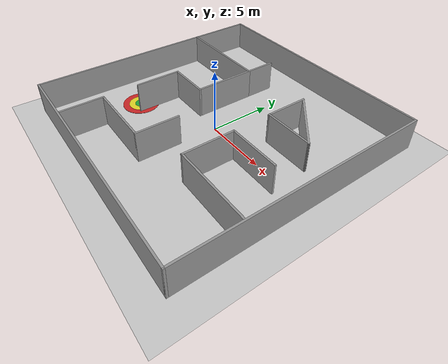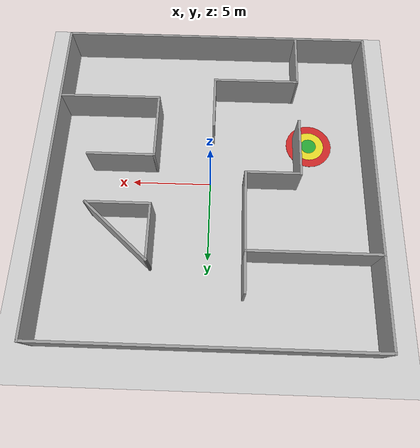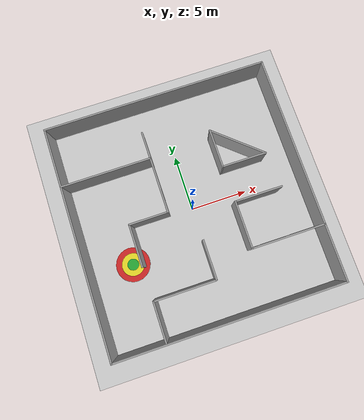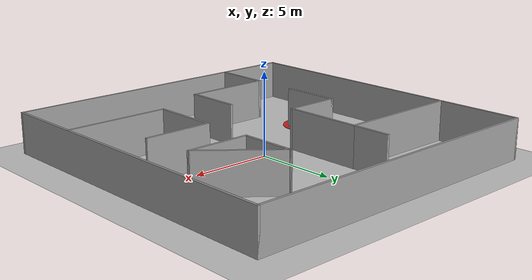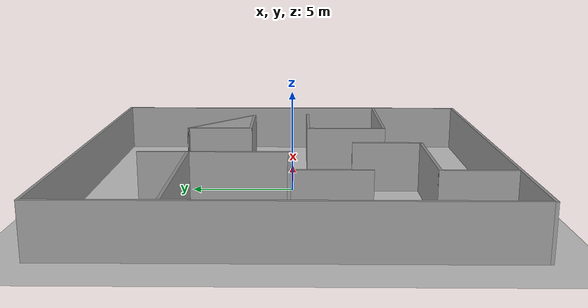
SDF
<sdf version="1.6">
 <world name="default">
  <light name="sun" type="directional">
   <pose>0 0 10 0 -0 0</pose>
   <diffuse>0.8 0.8 0.8 1</diffuse>
   <specular>0.2 0.2 0.2 1</specular>
   <attenuation>
    <range>1000</range>
    <constant>0.9</constant>
    <linear>0.01</linear>
    <quadratic>0.001</quadratic>
   </attenuation>
   <direction>0.5 0.1 -0.9</direction>
  </light>
  <model name="ground_plane">
   <static>1</static>
   <link name="link">
    <collision name="collision">
     <geometry><plane><normal>0 0 1</normal><size>100 100</size></plane></geometry>
     <surface><friction><ode><mu>100</mu><mu2>50</mu2></ode></friction></surface>
    </collision>
    <visual name="visual">
     <cast_shadows>0</cast_shadows>
     <geometry><plane><normal>0 0 1</normal><size>100 100</size></plane></geometry>
     <material>
      <script><uri>file://media/materials/scripts/gazebo.material</uri><name>Gazebo/Grey</name></script>
     </material>
    </visual>
    <velocity_decay><linear>0</linear><angular>0</angular></velocity_decay>
   </link>
  </model>
  <scene><ambient>0.4 0.4 0.4 1</ambient><background>0.7 0.7 0.7 1</background><shadows>0</shadows></scene>
  <physics name="default_physics" default="0" type="ode">
   <max_step_size>0.01</max_step_size>
   <real_time_factor>1</real_time_factor>
   <real_time_update_rate>0</real_time_update_rate>
  </physics>
  <gravity>0 0 -9.8</gravity>
  <magnetic_field>6e-06 2.3e-05 -4.2e-05</magnetic_field>
  <atmosphere type="adiabatic"/>
  <spherical_coordinates>
   <surface_model>EARTH_WGS84</surface_model>
   <latitude_deg>0</latitude_deg>
   <longitude_deg>0</longitude_deg>
   <elevation>0</elevation>
   <heading_deg>0</heading_deg>
  </spherical_coordinates>
  <model name="Target">
   <static>1</static>
   <link name="green">
    <visual name="visual">
     <geometry><cylinder><radius>0.5</radius><length>0.05</length></cylinder></geometry>
     <material>
      <script><uri>file://media/materials/scripts/gazebo.material</uri><name>Gazebo/Green</name></script>
      <ambient>1 1 1 1</ambient>
     </material>
     <cast_shadows>0</cast_shadows>
    </visual>
   </link>
   <link name="yellow">
    <visual name="visual">
     <geometry><cylinder><radius>1</radius><length>0.04</length></cylinder></geometry>
     <material>
      <script><uri>file://media/materials/scripts/gazebo.material</uri><name>Gazebo/Yellow</name></script>
      <ambient>1 1 1 1</ambient>
     </material>
     <cast_shadows>0</cast_shadows>
    </visual>
   </link>
   <link name="red">
    <visual name="visual">
     <geometry><cylinder><radius>1.5</radius><length>0.03</length></cylinder></geometry>
     <material>
      <script><uri>file://media/materials/scripts/gazebo.material</uri><name>Gazebo/Red</name></script>
      <ambient>1 1 1 1</ambient>
     </material>
     <cast_shadows>0</cast_shadows>
    </visual>
   </link>
   <pose>-6.47803 -3 0 0 -0 0</pose>
  </model>
  <model name="Test_Buliding_One">
   <pose>-0.076732 0.148221 0 0 -0 0</pose>
   <link name="Wall_0">
    <collision name="Wall_0_Collision">
     <geometry><box><size>20 0.15 2.5</size></box></geometry>
     <pose>0 0 1.25 0 -0 0</pose>
    </collision>
    <visual name="Wall_0_Visual">
     <pose>0 0 1.25 0 -0 0</pose>
     <geometry><box><size>20 0.15 2.5</size></box></geometry>
     <material>
      <script><uri>file://media/materials/scripts/gazebo.material</uri><name>Gazebo/Grey</name></script>
      <ambient>1 1 1 1</ambient>
     </material>
     <meta><layer>0</layer></meta>
    </visual>
    <pose>0 -10.05 0 0 -0 0</pose>
   </link>
   <link name="Wall_10">
    <collision name="Wall_10_Collision">
     <geometry><box><size>2.5 0.15 2.5</size></box></geometry>
     <pose>0 0 1.25 0 -0 0</pose>
    </collision>
    <visual name="Wall_10_Visual">
     <pose>0 0 1.25 0 -0 0</pose>
     <geometry><box><size>2.5 0.15 2.5</size></box></geometry>
     <material>
      <script><uri>file://media/materials/scripts/gazebo.material</uri><name>Gazebo/Grey</name></script>
      <ambient>1 1 1 1</ambient>
     </material>
     <meta><layer>0</layer></meta>
    </visual>
    <pose>-2.06302 5.97354 0 0 -0 1.5708</pose>
   </link>
   <link name="Wall_13">
    <collision name="Wall_13_Collision">
     <geometry><box><size>3.75 0.15 2.5</size></box></geometry>
     <pose>0 0 1.25 0 -0 0</pose>
    </collision>
    <visual name="Wall_13_Visual">
     <pose>0 0 1.25 0 -0 0</pose>
     <geometry><box><size>3.75 0.15 2.5</size></box></geometry>
     <material>
      <script><uri>file://media/materials/scripts/gazebo.material</uri><name>Gazebo/Grey</name></script>
      <ambient>1 1 1 1</ambient>
     </material>
     <meta><layer>0</layer></meta>
    </visual>
    <pose>-5.41302 -1.85146 0 0 0 -1.5708</pose>
   </link>
   <link name="Wall_15">
    <collision name="Wall_15_Collision">
     <geometry><box><size>3.5 0.15 2.5</size></box></geometry>
     <pose>0 0 1.25 0 -0 0</pose>
    </collision>
    <visual name="Wall_15_Visual">
     <pose>0 0 1.25 0 -0 0</pose>
     <geometry><box><size>3.5 0.15 2.5</size></box></geometry>
     <material>
      <script><uri>file://media/materials/scripts/gazebo.material</uri><name>Gazebo/Grey</name></script>
      <ambient>1 1 1 1</ambient>
     </material>
     <meta><layer>0</layer></meta>
    </visual>
    <pose>-5.38457 -8.24393 0 0 -0 1.5708</pose>
   </link>
   <link name="Wall_17">
    <collision name="Wall_17_Collision">
     <geometry><box><size>6.5 0.15 2.5</size></box></geometry>
     <pose>0 0 1.25 0 -0 0</pose>
    </collision>
    <visual name="Wall_17_Visual">
     <pose>0 0 1.25 0 -0 0</pose>
     <geometry><box><size>6.5 0.15 2.5</size></box></geometry>
     <material>
      <script><uri>file://media/materials/scripts/gazebo.material</uri><name>Gazebo/Grey</name></script>
      <ambient>1 1 1 1</ambient>
     </material>
     <meta><layer>0</layer></meta>
    </visual>
    <pose>6.72396 -5.10745 0 0 -0 3.14159</pose>
   </link>
   <link name="Wall_18">
    <collision name="Wall_18_Collision">
     <geometry><box><size>4.25 0.15 2.5</size></box></geometry>
     <pose>0 0 1.25 0 -0 0</pose>
    </collision>
    <visual name="Wall_18_Visual">
     <pose>0 0 1.25 0 -0 0</pose>
     <geometry><box><size>4.25 0.15 2.5</size></box></geometry>
     <material>
      <script><uri>file://media/materials/scripts/gazebo.material</uri><name>Gazebo/Grey</name></script>
      <ambient>1 1 1 1</ambient>
     </material>
     <meta><layer>0</layer></meta>
    </visual>
    <pose>3.54895 -3.05745 0 0 -0 1.5708</pose>
   </link>
   <link name="Wall_19">
    <collision name="Wall_19_Collision">
     <geometry><box><size>4.25 0.15 2.5</size></box></geometry>
     <pose>0 0 1.25 0 -0 0</pose>
    </collision>
    <visual name="Wall_19_Visual">
     <pose>0 0 1.25 0 -0 0</pose>
     <geometry><box><size>4.25 0.15 2.5</size></box></geometry>
     <material>
      <script><uri>file://media/materials/scripts/gazebo.material</uri><name>Gazebo/Grey</name></script>
      <ambient>1 1 1 1</ambient>
     </material>
     <meta><layer>0</layer></meta>
    </visual>
    <pose>5.59896 -1.00745 0 0 -0 0</pose>
   </link>
   <link name="Wall_2">
    <collision name="Wall_2_Collision">
     <geometry><box><size>20.25 0.15 2.5</size></box></geometry>
     <pose>0 0 1.25 0 -0 0</pose>
    </collision>
    <visual name="Wall_2_Visual">
     <pose>0 0 1.25 0 -0 0</pose>
     <geometry><box><size>20.25 0.15 2.5</size></box></geometry>
     <material>
      <script><uri>file://media/materials/scripts/gazebo.material</uri><name>Gazebo/Grey</name></script>
      <ambient>1 1 1 1</ambient>
     </material>
     <meta><layer>0</layer></meta>
    </visual>
    <pose>-9.925 0 0 0 -0 1.5708</pose>
   </link>
   <link name="Wall_21">
    <collision name="Wall_21_Collision">
     <geometry><box><size>5.5 0.15 2.5</size></box></geometry>
     <pose>0 0 1.25 0 -0 0</pose>
    </collision>
    <visual name="Wall_21_Visual">
     <pose>0 0 1.25 0 -0 0</pose>
     <geometry><box><size>5.5 0.15 2.5</size></box></geometry>
     <material>
      <script><uri>file://media/materials/scripts/gazebo.material</uri><name>Gazebo/Grey</name></script>
      <ambient>1 1 1 1</ambient>
     </material>
     <meta><layer>0</layer></meta>
    </visual>
    <pose>-2.70957 -6.56893 0 0 -0 0</pose>
   </link>
   <link name="Wall_22">
    <collision name="Wall_22_Collision">
     <geometry><box><size>3.5 0.15 2.5</size></box></geometry>
     <pose>0 0 1.25 0 -0 0</pose>
    </collision>
    <visual name="Wall_22_Visual">
     <pose>0 0 1.25 0 -0 0</pose>
     <geometry><box><size>3.5 0.15 2.5</size></box></geometry>
     <material>
      <script><uri>file://media/materials/scripts/gazebo.material</uri><name>Gazebo/Grey</name></script>
      <ambient>1 1 1 1</ambient>
     </material>
     <meta><layer>0</layer></meta>
    </visual>
    <pose>-0.03457 -4.89393 0 0 -0 1.5708</pose>
   </link>
   <link name="Wall_24">
    <collision name="Wall_24_Collision">
     <geometry><box><size>3.5 0.15 2.5</size></box></geometry>
     <pose>0 0 1.25 0 -0 0</pose>
    </collision>
    <visual name="Wall_24_Visual">
     <pose>0 0 1.25 0 -0 0</pose>
     <geometry><box><size>3.5 0.15 2.5</size></box></geometry>
     <material>
      <script><uri>file://media/materials/scripts/gazebo.material</uri><name>Gazebo/Grey</name></script>
      <ambient>1 1 1 1</ambient>
     </material>
     <meta><layer>0</layer></meta>
    </visual>
    <pose>3.53082 3.83111 0 0 0 -1.5708</pose>
   </link>
   <link name="Wall_25">
    <collision name="Wall_25_Collision">
     <geometry><box><size>4 0.15 2.5</size></box></geometry>
     <pose>0 0 1.25 0 -0 0</pose>
    </collision>
    <visual name="Wall_25_Visual">
     <pose>0 0 1.25 0 -0 0</pose>
     <geometry><box><size>4 0.15 2.5</size></box></geometry>
     <material>
      <script><uri>file://media/materials/scripts/gazebo.material</uri><name>Gazebo/Grey</name></script>
      <ambient>1 1 1 1</ambient>
     </material>
     <meta><layer>0</layer></meta>
    </visual>
    <pose>5.45582 2.15611 0 0 -0 0</pose>
   </link>
   <link name="Wall_26">
    <collision name="Wall_26_Collision">
     <geometry><box><size>5.25343 0.15 2.5</size></box></geometry>
     <pose>0 0 1.25 0 -0 0</pose>
    </collision>
    <visual name="Wall_26_Visual">
     <pose>0 0 1.25 0 -0 0</pose>
     <geometry><box><size>5.25343 0.15 2.5</size></box></geometry>
     <material>
      <script><uri>file://media/materials/scripts/gazebo.material</uri><name>Gazebo/Grey</name></script>
      <ambient>1 1 1 1</ambient>
     </material>
     <meta><layer>0</layer></meta>
    </visual>
    <pose>5.45582 3.83111 0 0 -0 2.42553</pose>
   </link>
   <link name="Wall_3">
    <collision name="Wall_3_Collision">
     <geometry><box><size>20 0.15 2.5</size></box></geometry>
     <pose>0 0 1.25 0 -0 0</pose>
    </collision>
    <visual name="Wall_3_Visual">
     <pose>0 0 1.25 0 -0 0</pose>
     <geometry><box><size>20 0.15 2.5</size></box></geometry>
     <material>
      <script><uri>file://media/materials/scripts/gazebo.material</uri><name>Gazebo/Grey</name></script>
      <ambient>1 1 1 1</ambient>
     </material>
     <meta><layer>0</layer></meta>
    </visual>
    <pose>0 10.05 0 0 -0 0</pose>
   </link>
   <link name="Wall_4">
    <collision name="Wall_4_Collision">
     <geometry><box><size>20.25 0.15 2.5</size></box></geometry>
     <pose>0 0 1.25 0 -0 0</pose>
    </collision>
    <visual name="Wall_4_Visual">
     <pose>0 0 1.25 0 -0 0</pose>
     <geometry><box><size>20.25 0.15 2.5</size></box></geometry>
     <material>
      <script><uri>file://media/materials/scripts/gazebo.material</uri><name>Gazebo/Grey</name></script>
      <ambient>1 1 1 1</ambient>
     </material>
     <meta><layer>0</layer></meta>
    </visual>
    <pose>9.925 0 0 0 0 -1.5708</pose>
   </link>
   <link name="Wall_6">
    <collision name="Wall_6_Collision">
     <geometry><box><size>8 0.15 2.5</size></box></geometry>
     <pose>0 0 1.25 0 -0 0</pose>
    </collision>
    <visual name="Wall_6_Visual">
     <pose>0 0 1.25 0 -0 0</pose>
     <geometry><box><size>8 0.15 2.5</size></box></geometry>
     <material>
      <script><uri>file://media/materials/scripts/gazebo.material</uri><name>Gazebo/Grey</name></script>
      <ambient>1 1 1 1</ambient>
     </material>
     <meta><layer>0</layer></meta>
    </visual>
    <pose>-5.98802 4.79854 0 0 -0 0</pose>
   </link>
   <link name="Wall_7">
    <collision name="Wall_7_Collision">
     <geometry><box><size>5 0.15 2.5</size></box></geometry>
     <pose>0 0 1.25 0 -0 0</pose>
    </collision>
    <visual name="Wall_7_Visual">
     <pose>0 0 1.25 0 -0 0</pose>
     <geometry><box><size>5 0.15 2.5</size></box></geometry>
     <material>
      <script><uri>file://media/materials/scripts/gazebo.material</uri><name>Gazebo/Grey</name></script>
      <ambient>1 1 1 1</ambient>
     </material>
     <meta><layer>0</layer></meta>
    </visual>
    <pose>-2.06302 2.37354 0 0 0 -1.5708</pose>
   </link>
   <link name="Wall_8">
    <collision name="Wall_8_Collision">
     <geometry><box><size>3.5 0.15 2.5</size></box></geometry>
     <pose>0 0 1.25 0 -0 0</pose>
    </collision>
    <visual name="Wall_8_Visual">
     <pose>0 0 1.25 0 -0 0</pose>
     <geometry><box><size>3.5 0.15 2.5</size></box></geometry>
     <material>
      <script><uri>file://media/materials/scripts/gazebo.material</uri><name>Gazebo/Grey</name></script>
      <ambient>1 1 1 1</ambient>
     </material>
     <meta><layer>0</layer></meta>
    </visual>
    <pose>-3.73802 -0.051463 0 0 -0 3.14159</pose>
   </link>
   <static>1</static>
  </model>
 </world>
</sdf>
